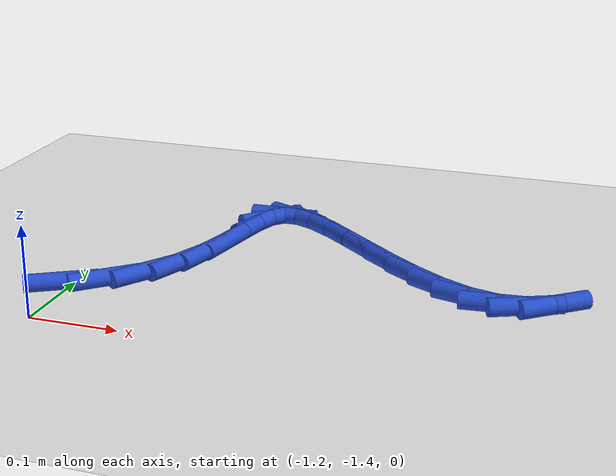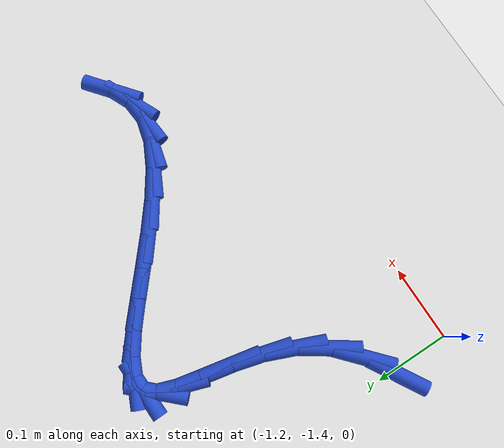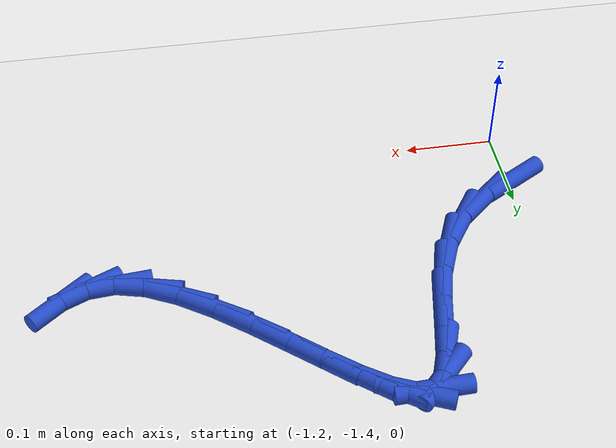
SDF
<sdf version="1.6">
 <world name="default">
  <model name="ground_plane">
   <static>1</static>
   <link name="link">
    <collision name="collision">
     <geometry><plane><normal>0 0 1</normal><size>100 100</size></plane></geometry>
     <surface><friction><ode><mu>100</mu><mu2>50</mu2></ode></friction></surface>
    </collision>
    <visual name="visual">
     <cast_shadows>0</cast_shadows>
     <geometry><plane><normal>0 0 1</normal><size>100 100</size></plane></geometry>
     <material>
      <script><uri>file://media/materials/scripts/gazebo.material</uri><name>Gazebo/WhiteGlow</name></script>
     </material>
    </visual>
   </link>
  </model>
  <model name="line">
   <link name="link_198">
    <pose>-1.2047241136999274 -1.3228577109962287 0.01 0 1.57 0.527740136315438</pose>
    <collision name="collision">
     <geometry><cylinder><radius>0.01</radius><length>0.08</length></cylinder></geometry>
    </collision>
    <visual name="visual">
     <material>
      <script><name>Gazebo/Blue</name><uri>file://media/materials/scripts/gazebo.material</uri></script>
     </material>
     <geometry><cylinder><radius>0.01</radius><length>0.08</length></cylinder></geometry>
    </visual>
   </link>
   <link name="link_199">
    <pose>-1.1651615068119994 -1.2997972470497754 0.01 0 1.57 0.7308801643994957</pose>
    <collision name="collision">
     <geometry><cylinder><radius>0.01</radius><length>0.08</length></cylinder></geometry>
    </collision>
    <visual name="visual">
     <material>
      <script><name>Gazebo/Blue</name><uri>file://media/materials/scripts/gazebo.material</uri></script>
     </material>
     <geometry><cylinder><radius>0.01</radius><length>0.08</length></cylinder></geometry>
    </visual>
   </link>
   <link name="link_200">
    <pose>-1.1323503929555836 -1.27038195724267 0.01 0 1.57 0.9784484239390491</pose>
    <collision name="collision">
     <geometry><cylinder><radius>0.01</radius><length>0.08</length></cylinder></geometry>
    </collision>
    <visual name="visual">
     <material>
      <script><name>Gazebo/Blue</name><uri>file://media/materials/scripts/gazebo.material</uri></script>
     </material>
     <geometry><cylinder><radius>0.01</radius><length>0.08</length></cylinder></geometry>
    </visual>
   </link>
   <link name="link_201">
    <pose>-1.1085234325204683 -1.2349758293036825 0.01 0 1.57 1.1820220716263554</pose>
    <collision name="collision">
     <geometry><cylinder><radius>0.01</radius><length>0.08</length></cylinder></geometry>
    </collision>
    <visual name="visual">
     <material>
      <script><name>Gazebo/Blue</name><uri>file://media/materials/scripts/gazebo.material</uri></script>
     </material>
     <geometry><cylinder><radius>0.01</radius><length>0.08</length></cylinder></geometry>
    </visual>
   </link>
   <link name="link_202">
    <pose>-1.092506696023089 -1.1958746435082854 0.01 0 1.57 1.3115583352607922</pose>
    <collision name="collision">
     <geometry><cylinder><radius>0.01</radius><length>0.08</length></cylinder></geometry>
    </collision>
    <visual name="visual">
     <material>
      <script><name>Gazebo/Blue</name><uri>file://media/materials/scripts/gazebo.material</uri></script>
     </material>
     <geometry><cylinder><radius>0.01</radius><length>0.08</length></cylinder></geometry>
    </visual>
   </link>
   <link name="link_203">
    <pose>-1.0819436004868597 -1.1560448335678133 0.01 0 1.57 1.3747070450417596</pose>
    <collision name="collision">
     <geometry><cylinder><radius>0.01</radius><length>0.08</length></cylinder></geometry>
    </collision>
    <visual name="visual">
     <material>
      <script><name>Gazebo/Blue</name><uri>file://media/materials/scripts/gazebo.material</uri></script>
     </material>
     <geometry><cylinder><radius>0.01</radius><length>0.08</length></cylinder></geometry>
    </visual>
   </link>
   <link name="link_204">
    <pose>-1.0744763891536657 -1.1184534988159678 0.01 0 1.57 1.3659321817061136</pose>
    <collision name="collision">
     <geometry><cylinder><radius>0.01</radius><length>0.08</length></cylinder></geometry>
    </collision>
    <visual name="visual">
     <material>
      <script><name>Gazebo/Blue</name><uri>file://media/materials/scripts/gazebo.material</uri></script>
     </material>
     <geometry><cylinder><radius>0.01</radius><length>0.08</length></cylinder></geometry>
    </visual>
   </link>
   <link name="link_205">
    <pose>-1.0677473052653916 -1.0860677385864528 0.01 0 1.57 1.238759999972717</pose>
    <collision name="collision">
     <geometry><cylinder><radius>0.01</radius><length>0.08</length></cylinder></geometry>
    </collision>
    <visual name="visual">
     <material>
      <script><name>Gazebo/Blue</name><uri>file://media/materials/scripts/gazebo.material</uri></script>
     </material>
     <geometry><cylinder><radius>0.01</radius><length>0.08</length></cylinder></geometry>
    </visual>
   </link>
   <link name="link_206">
    <pose>-1.059398592063922 -1.0618546522129693 0.01 0 1.57 0.8151839152784199</pose>
    <collision name="collision">
     <geometry><cylinder><radius>0.01</radius><length>0.08</length></cylinder></geometry>
    </collision>
    <visual name="visual">
     <material>
      <script><name>Gazebo/Blue</name><uri>file://media/materials/scripts/gazebo.material</uri></script>
     </material>
     <geometry><cylinder><radius>0.01</radius><length>0.08</length></cylinder></geometry>
    </visual>
   </link>
   <link name="link_207">
    <pose>-1.0470760744477137 -1.0487752968786304 0.01 0 1.57 0.026489753668805592</pose>
    <collision name="collision">
     <geometry><cylinder><radius>0.01</radius><length>0.08</length></cylinder></geometry>
    </collision>
    <visual name="visual">
     <material>
      <script><name>Gazebo/Blue</name><uri>file://media/materials/scripts/gazebo.material</uri></script>
     </material>
     <geometry><cylinder><radius>0.01</radius><length>0.08</length></cylinder></geometry>
    </visual>
   </link>
   <link name="link_208">
    <pose>-1.029306595532205 -1.0483044776284545 0.01 0 1.57 -0.4225703770144212</pose>
    <collision name="collision">
     <geometry><cylinder><radius>0.01</radius><length>0.08</length></cylinder></geometry>
    </collision>
    <visual name="visual">
     <material>
      <script><name>Gazebo/Blue</name><uri>file://media/materials/scripts/gazebo.material</uri></script>
     </material>
     <geometry><cylinder><radius>0.01</radius><length>0.08</length></cylinder></geometry>
    </visual>
   </link>
   <link name="link_209">
    <pose>-1.0066460911146677 -1.0584939790992143 0.01 0 1.57 -0.603750950084659</pose>
    <collision name="collision">
     <geometry><cylinder><radius>0.01</radius><length>0.08</length></cylinder></geometry>
    </collision>
    <visual name="visual">
     <material>
      <script><name>Gazebo/Blue</name><uri>file://media/materials/scripts/gazebo.material</uri></script>
     </material>
     <geometry><cylinder><radius>0.01</radius><length>0.08</length></cylinder></geometry>
    </visual>
   </link>
   <link name="link_210">
    <pose>-0.9799351530600413 -1.0769153794109079 0.01 0 1.57 -0.6805877199343121</pose>
    <collision name="collision">
     <geometry><cylinder><radius>0.01</radius><length>0.08</length></cylinder></geometry>
    </collision>
    <visual name="visual">
     <material>
      <script><name>Gazebo/Blue</name><uri>file://media/materials/scripts/gazebo.material</uri></script>
     </material>
     <geometry><cylinder><radius>0.01</radius><length>0.08</length></cylinder></geometry>
    </visual>
   </link>
   <link name="link_211">
    <pose>-0.9500143732332637 -1.1011402566835333 0.01 0 1.57 -0.7072457551637812</pose>
    <collision name="collision">
     <geometry><cylinder><radius>0.01</radius><length>0.08</length></cylinder></geometry>
    </collision>
    <visual name="visual">
     <material>
      <script><name>Gazebo/Blue</name><uri>file://media/materials/scripts/gazebo.material</uri></script>
     </material>
     <geometry><cylinder><radius>0.01</radius><length>0.08</length></cylinder></geometry>
    </visual>
   </link>
   <link name="link_212">
    <pose>-0.9177243434992736 -1.1287401890370896 0.01 0 1.57 -0.7010624689117357</pose>
    <collision name="collision">
     <geometry><cylinder><radius>0.01</radius><length>0.08</length></cylinder></geometry>
    </collision>
    <visual name="visual">
     <material>
      <script><name>Gazebo/Blue</name><uri>file://media/materials/scripts/gazebo.material</uri></script>
     </material>
     <geometry><cylinder><radius>0.01</radius><length>0.08</length></cylinder></geometry>
    </visual>
   </link>
   <link name="link_213">
    <pose>-0.8839056557230086 -1.1572867545915753 0.01 0 1.57 -0.665114458944796</pose>
    <collision name="collision">
     <geometry><cylinder><radius>0.01</radius><length>0.08</length></cylinder></geometry>
    </collision>
    <visual name="visual">
     <material>
      <script><name>Gazebo/Blue</name><uri>file://media/materials/scripts/gazebo.material</uri></script>
     </material>
     <geometry><cylinder><radius>0.01</radius><length>0.08</length></cylinder></geometry>
    </visual>
   </link>
   <link name="link_214">
    <pose>-0.8493989017694092 -1.1843515314669872 0.01 0 1.57 -0.5930586843688284</pose>
    <collision name="collision">
     <geometry><cylinder><radius>0.01</radius><length>0.08</length></cylinder></geometry>
    </collision>
    <visual name="visual">
     <material>
      <script><name>Gazebo/Blue</name><uri>file://media/materials/scripts/gazebo.material</uri></script>
     </material>
     <geometry><cylinder><radius>0.01</radius><length>0.08</length></cylinder></geometry>
    </visual>
   </link>
   <link name="link_215">
    <pose>-0.8150446735034131 -1.2075060977833245 0.01 0 1.57 -0.4668887159177808</pose>
    <collision name="collision">
     <geometry><cylinder><radius>0.01</radius><length>0.08</length></cylinder></geometry>
    </collision>
    <visual name="visual">
     <material>
      <script><name>Gazebo/Blue</name><uri>file://media/materials/scripts/gazebo.material</uri></script>
     </material>
     <geometry><cylinder><radius>0.01</radius><length>0.08</length></cylinder></geometry>
    </visual>
   </link>
   <link name="link_216">
    <pose>-0.7816835627899593 -1.2243220316605858 0.01 0 1.57 -0.24995867922357928</pose>
    <collision name="collision">
     <geometry><cylinder><radius>0.01</radius><length>0.08</length></cylinder></geometry>
    </collision>
    <visual name="visual">
     <material>
      <script><name>Gazebo/Blue</name><uri>file://media/materials/scripts/gazebo.material</uri></script>
     </material>
     <geometry><cylinder><radius>0.01</radius><length>0.08</length></cylinder></geometry>
    </visual>
   </link>
   <link name="link_217">
    <pose>-0.7501561614939859 -1.2323709112187693 0.01 0 1.57 0.08512039429198465</pose>
    <collision name="collision">
     <geometry><cylinder><radius>0.01</radius><length>0.08</length></cylinder></geometry>
    </collision>
    <visual name="visual">
     <material>
      <script><name>Gazebo/Blue</name><uri>file://media/materials/scripts/gazebo.material</uri></script>
     </material>
     <geometry><cylinder><radius>0.01</radius><length>0.08</length></cylinder></geometry>
    </visual>
   </link>
   <link name="link_218">
    <pose>-0.7210994569584862 -1.2298916022484099 0.01 0 1.57 0.42379242982662657</pose>
    <collision name="collision">
     <geometry><cylinder><radius>0.01</radius><length>0.08</length></cylinder></geometry>
    </collision>
    <visual name="visual">
     <material>
      <script><name>Gazebo/Blue</name><uri>file://media/materials/scripts/gazebo.material</uri></script>
     </material>
     <geometry><cylinder><radius>0.01</radius><length>0.08</length></cylinder></geometry>
    </visual>
   </link>
   <link name="link_219">
    <pose>-0.6943291210212176 -1.2178147266220343 0.01 0 1.57 0.6787697903662492</pose>
    <collision name="collision">
     <geometry><cylinder><radius>0.01</radius><length>0.08</length></cylinder></geometry>
    </collision>
    <visual name="visual">
     <material>
      <script><name>Gazebo/Blue</name><uri>file://media/materials/scripts/gazebo.material</uri></script>
     </material>
     <geometry><cylinder><radius>0.01</radius><length>0.08</length></cylinder></geometry>
    </visual>
   </link>
  </model>
 </world>
</sdf>
